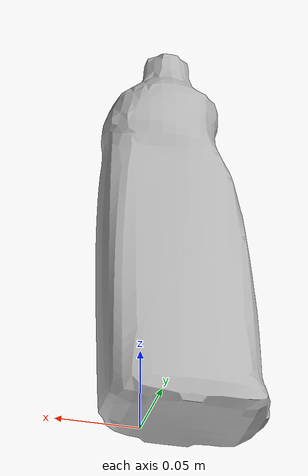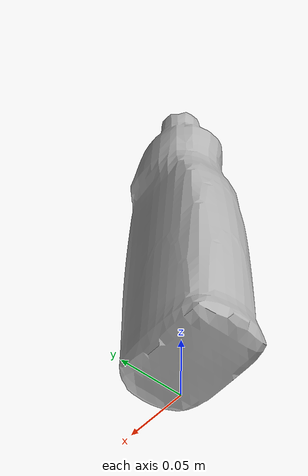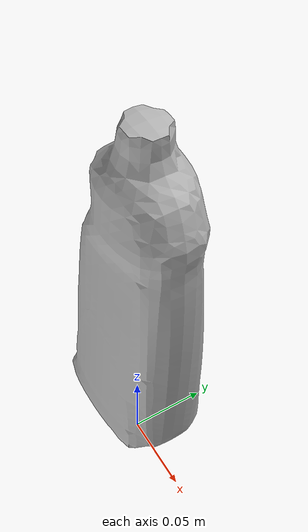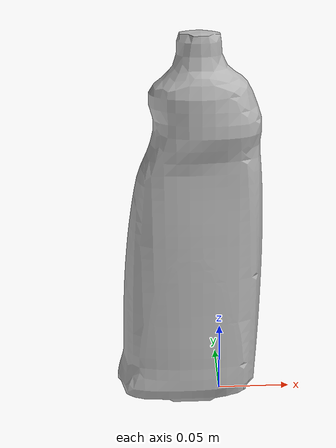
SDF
<?xml version='1.0'?>
<sdf version="1.4">
  <model name="bleach_cleanser">
    <static>false</static>
    <link name="link">
      <inertial>
        <pose>-0.017138949272641098 0.011574369859748879 0.09969796254743377 -3.0710620577865737 0.00011268369926741837 1.560369287349376</pose>
        <mass>0.0009723430520036825</mass>
        <inertia>
          <ixx>4.566127982914434e-06</ixx>
          <ixy>-1.2690307799270565e-22</ixy>
          <ixz>7.808246706822421e-22</ixz>
          <iyy>4.251487136560933e-06</iyy>
          <iyz>-1.5988800156155683e-22</iyz>
          <izz>7.65292449271737e-07</izz>
        </inertia>
      </inertial>
      <collision name="collision">
        <geometry>
          <!-- Use a downsampled mesh for collisions -->
          <mesh>
            <uri>model://021_bleach_cleanser/google_16k/low_poly.obj</uri>
	        </mesh>
        </geometry>
        <surface>
      </surface>
      </collision>
      <visual name="visual">
        <geometry>
          <mesh>
            <uri>model://021_bleach_cleanser/google_16k/textured.obj</uri>
	        </mesh>
        </geometry>
        <material>
          <script>
            <uri>model://021_bleach_cleanser/bleach_cleanser.material</uri>
            <name>bleach_cleanser</name>
          </script>
        </material>
      </visual>
    </link>
  </model>
</sdf>
